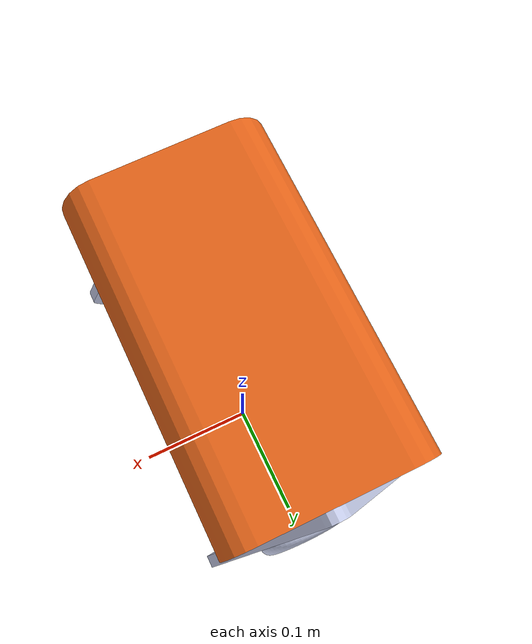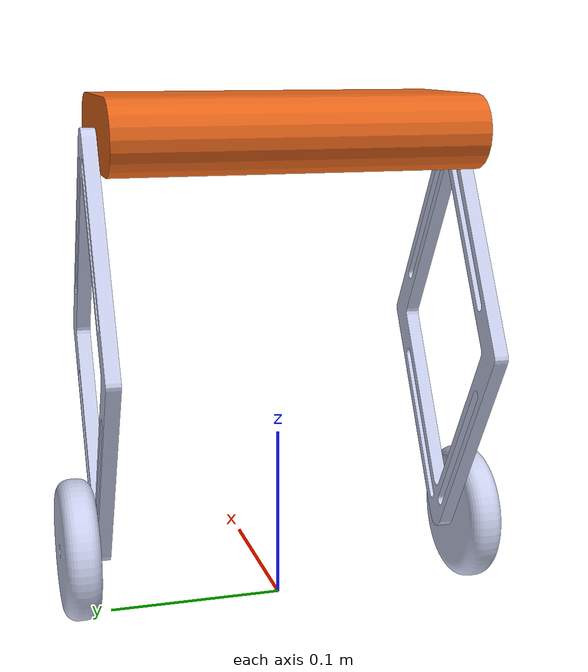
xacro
<?xml version="1.0" encoding="utf-8"?>
<robot

  name="wheel_leg3" xmlns:xacro="http://www.ros.org/wiki/xacro">
  <!-- Import all Gazebo-customization elements, including Gazebo colors -->
  <xacro:include filename="$(find wheel_leg3)/urdf/wheel_leg3.gazebo" />

  <link name="base_footprint" />

  <joint name="joint_base_footprint_base_link" type="fixed">
  <origin
      xyz="0 0 0.253"
      rpy="0 0 0" />
    <parent link="base_footprint" />
    <child link="base_link" />
  </joint>

  <link
    name="base_link">
    <inertial>
      <origin
        xyz="-7.5625E-18 2.0865E-17 0.020003"
        rpy="0 0 0" />
      <mass
        value="3.0" />
      <inertia
        ixx="0.010361689230147506"
        ixy="-9.6242E-20"
        ixz="2.2781E-20"
        iyy="0.0035350575873913923"
        iyz="-2.8504E-20"
        izz="0.013152825486630297" />
    </inertial>
    <visual>
      <origin
        xyz="0 0 0"
        rpy="0 0 0" />
      <geometry>
        <mesh
          filename="package://wheel_leg3/meshes/base_link.STL" />
      </geometry>
      <material
        name="">
        <color
          rgba="0.90588 0.39607 0.101960 1" />
      </material>
    </visual>
    <collision>
      <origin
        xyz="0 0 0"
        rpy="0 0 0" />
      <geometry>
        <mesh
          filename="package://wheel_leg3/meshes/base_link.STL" />
      </geometry>
    </collision>
  </link>
  <link
    name="link_leg1">
    <inertial>
      <origin
        xyz="7.7704E-17 -0.004 2.7756E-17"
        rpy="0 0 0" />
      <mass
        value="0.045518" />
      <inertia
        ixx="0.00019749"
        ixy="-1.7857E-20"
        ixz="1.2878E-19"
        iyy="0.00027352"
        iyz="-3.7247E-07"
        izz="7.6559E-05" />
    </inertial>
    <visual>
      <origin
        xyz="0 0 0"
        rpy="0 0 0" />
      <geometry>
        <mesh
          filename="package://wheel_leg3/meshes/link_leg1.STL" />
      </geometry>
      <material
        name="">
        <color
          rgba="0.79216 0.81961 0.93333 1" />
      </material>
    </visual>
    <collision>
      <origin
        xyz="0 0 0"
        rpy="0 0 0" />
      <geometry>
        <mesh
          filename="package://wheel_leg3/meshes/link_leg1.STL" />
      </geometry>
    </collision>
  </link>
  <joint
    name="joint_base_leg1"
    type="fixed">
    <origin
      xyz="0 -0.1 -0.099"
      rpy="0 0 0" />
    <parent
      link="base_link" />
    <child
      link="link_leg1" />
    <axis
      xyz="0 0 0" />
  </joint>
  <link
    name="link_wheel1">
    <inertial>
      <origin
        xyz="-9.0013E-19 0 0"
        rpy="0 0 0" />
      <mass
        value="0.09293" />
      <inertia
        ixx="3.8232E-05"
        ixy="-1.4809E-20"
        ixz="1.4223E-21"
        iyy="7.0742E-05"
        iyz="-9.308E-22"
        izz="3.8232E-05" />
    </inertial>
    <visual>
      <origin
        xyz="0 0 0"
        rpy="0 0 0" />
      <geometry>
        <mesh
          filename="package://wheel_leg3/meshes/link_wheel1.STL" />
      </geometry>
      <material
        name="">
        <color
          rgba="0.79216 0.81961 0.93333 1" />
        <texture
          filename="package://wheel_leg3/textures/wheel.jpg" />
      </material>
    </visual>
    <collision>
      <origin
        xyz="0 0 0"
        rpy="0 0 0" />
      <geometry>
        <mesh
          filename="package://wheel_leg3/meshes/link_wheel1.STL" />
      </geometry>
    </collision>
  </link>
  <joint
    name="joint_leg1_wheel1"
    type="continuous">
    <origin
      xyz="0 -0.018 -0.114"
      rpy="0 0 0" />
    <parent
      link="link_leg1" />
    <child
      link="link_wheel1" />
    <axis
      xyz="0 1 0" />
    <dynamics damping="0.1" friction="0.0"/>
  </joint>
  <link
    name="link_leg2">
    <inertial>
      <origin
        xyz="0 0 0"
        rpy="0 0 0" />
      <mass
        value="0.045518" />
      <inertia
        ixx="0.00019749"
        ixy="-1.30208900143619E-2"
        ixz="-3.32970136925068E-21"
        iyy="0.000273522842562215"
        iyz="3.72467225009607E-07"
        izz="7.65594944217713E-05" />
    </inertial>
    <visual>
      <origin
        xyz="0 0 0"
        rpy="0 0 0" />
      <geometry>
        <mesh
          filename="package://wheel_leg3/meshes/link_leg2.STL" />
      </geometry>
      <material
        name="">
        <color
          rgba="0.79216 0.81961 0.93333 1" />
      </material>
    </visual>
    <collision>
      <origin
        xyz="0 0 0"
        rpy="0 0 0" />
      <geometry>
        <mesh
          filename="package://wheel_leg3/meshes/link_leg2.STL" />
      </geometry>
    </collision>
  </link>
  <joint
    name="joint_base_leg2"
    type="fixed">
    <origin
      xyz="0 0.1 -0.099"
      rpy="0 0 0" />
    <parent
      link="base_link" />
    <child
      link="link_leg2" />
    <axis
      xyz="0 0 0" />
  </joint>
  <link
    name="link_wheel2">
    <inertial>
      <origin
        xyz="-2.6447E-19 0 0"
        rpy="0 0 0" />
      <mass
        value="0.09293" />
      <inertia
        ixx="3.8232E-05"
        ixy="-1.159E-20"
        ixz="1.5015E-21"
        iyy="7.0742E-05"
        iyz="1.2506E-22"
        izz="3.8232E-05" />
    </inertial>
    <visual>
      <origin
        xyz="0 0 0"
        rpy="0 0 0" />
      <geometry>
        <mesh
          filename="package://wheel_leg3/meshes/link_wheel2.STL" />
      </geometry>
      <material
        name="">
        <color
          rgba="0.79216 0.81961 0.93333 1" />
        <texture
          filename="package://wheel_leg3/textures/wheel.jpg" />
      </material>
    </visual>
    <collision>
      <origin
        xyz="0 0 0"
        rpy="0 0 0" />
      <geometry>
        <mesh
          filename="package://wheel_leg3/meshes/link_wheel2.STL" />
      </geometry>
    </collision>
  </link>
  <joint
    name="joint_leg2_wheel2"
    type="continuous">
    <origin
      xyz="0 0.018 -0.114"
      rpy="0 0 0" />
    <parent
      link="link_leg2" />
    <child
      link="link_wheel2" />
    <axis
      xyz="0 1 0" />
    <dynamics damping="0.1" friction="0.0"/>
  </joint>

  <link name="imu_link"/>
  <joint name="base_to_imu" type="fixed">
    <axis rpy="0 0 0" xyz="0 0 0"/>
    <parent link="base_link"/>
    <child link="imu_link"/>
    <origin rpy="0 0 0" xyz="0 0 0.04"/>
  </joint>

  <transmission name="tran1">
    <type>transmission_interface/SimpleTransmission</type>
    <joint name="joint_leg1_wheel1">
      <hardwareInterface>hardware_interface/EffortJointInterface</hardwareInterface>
    </joint>
    <actuator name="motor1">
      <hardwareInterface>hardware_interface/EffortJointInterface</hardwareInterface>
      <mechanicalReduction>1</mechanicalReduction>
    </actuator>
  </transmission>

  <transmission name="tran2">
    <type>transmission_interface/SimpleTransmission</type>
    <joint name="joint_leg2_wheel2">
      <hardwareInterface>hardware_interface/EffortJointInterface</hardwareInterface>
    </joint>
    <actuator name="motor2">
      <hardwareInterface>hardware_interface/EffortJointInterface</hardwareInterface>
      <mechanicalReduction>1</mechanicalReduction>
    </actuator>
  </transmission>
</robot>
